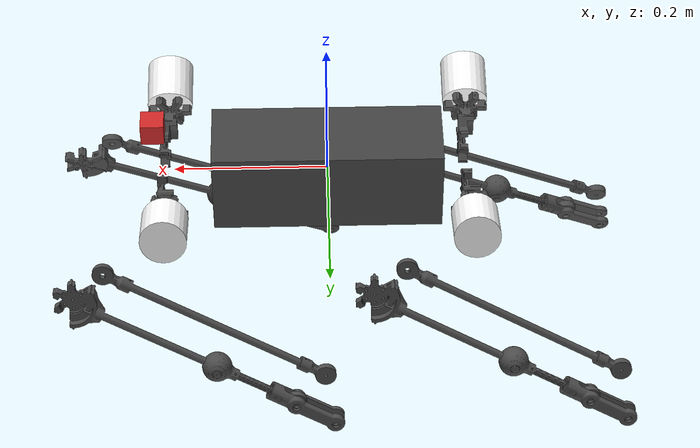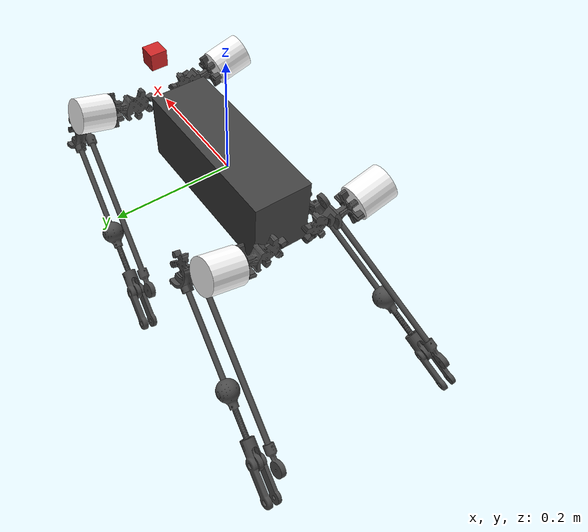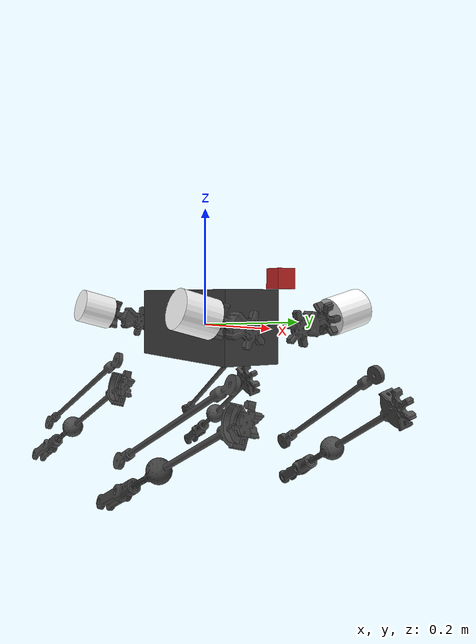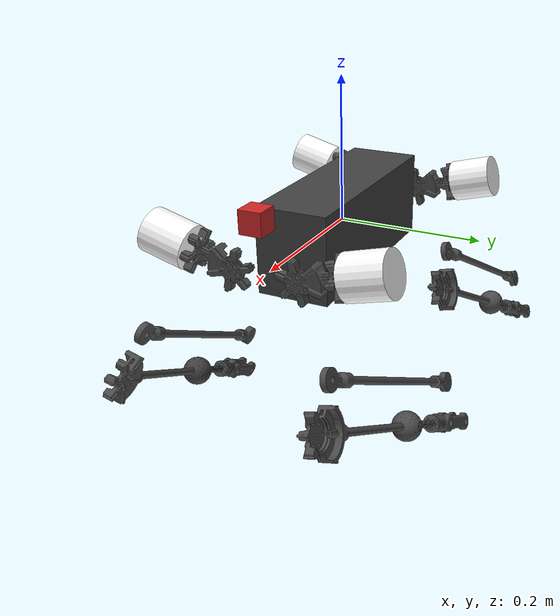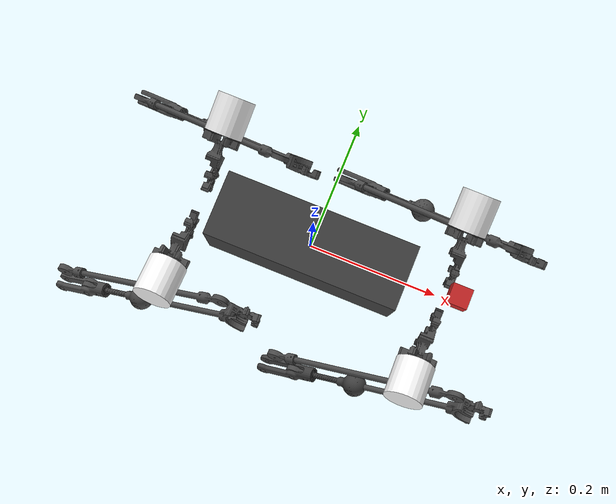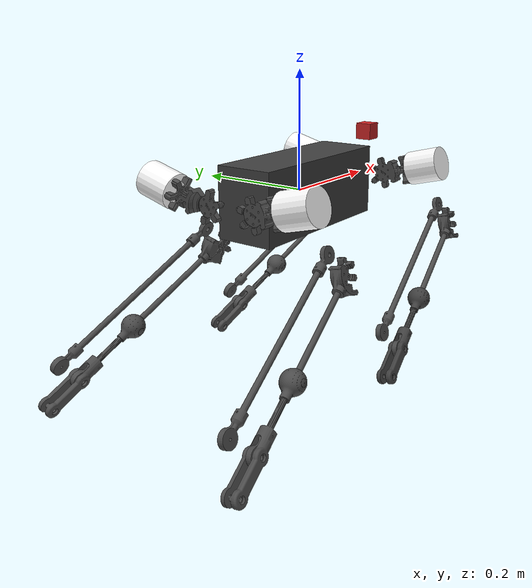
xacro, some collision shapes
<?xml version="1.0" encoding="utf-8"?>
<robot xmlns:xacro="http://ros.org/wiki/xacro" name="husky">

  <xacro:arg name="robot_type" default="husky"/>

  <!-- Properties -->
  <xacro:property name="motor_damping" value="0" />
  <xacro:property name="free_joint_damping" value="0" />
  <xacro:property name="motor_sfriction" value="0" />
  <xacro:property name="free_joint_sfriction" value="0" />
  <xacro:property name="efflim" value="23.5" />

  <xacro:property name="r_hip_frontal_ipos" value="${-0*pi/180}" />
  <xacro:property name="r_hip_frontal_lowlim" value="${-25*pi/180}" />
  <xacro:property name="r_hip_frontal_uplim" value="${-5*pi/180}" />
  <xacro:property name="l_hip_frontal_ipos" value="${-180*pi/180}" />
  <xacro:property name="l_hip_frontal_lowlim" value="${5*pi/180}" />
  <xacro:property name="l_hip_frontal_uplim" value="${25*pi/180}" />

  <xacro:property name="r_axis" value="1" />
  <xacro:property name="l_axis" value="1" />

  <gazebo>
        <plugin filename="libgz_ros2_control-system.so" name="gz_ros2_control::GazeboSimROS2ControlPlugin">

            <parameters>$(find husky_description)/config/controller.yaml</parameters>

            <!-- Optional: specify controller manager node name -->
            <controller_manager_prefix_node_name>controller_manager</controller_manager_prefix_node_name>

            <!-- Optional: tuning -->
            <hold_joints>true</hold_joints>
            <position_proportional_gain>0.5</position_proportional_gain>

        </plugin>
   </gazebo>

  <!-- Joint Definition -->
  <joint name="RF_HAA" type="revolute">
    <parent link="base"/>
    <child link="RF_hip"/>
    <origin rpy="-1.5708 ${r_hip_frontal_ipos} -1.5708" xyz="0.2087 -0.045 0.0001"/>
    <axis xyz="0.0 0.0 1.0"/>
    <dynamics damping="${motor_damping}" friction="${motor_sfriction}"/>
    <limit effort="${efflim}" lower="${r_hip_frontal_lowlim}" upper="${r_hip_frontal_uplim}" velocity="8.7267"/>
  </joint>

  <!-- LF_HAA Joint -->
<joint name="LF_HAA" type="revolute">
  <parent link="base"/>
  <child link="LF_hip"/>
  <origin rpy="-1.5708 ${l_hip_frontal_ipos} -1.5708" xyz="0.2087 0.045 0.0001"/>
  <axis xyz="0.0 0.0 1.0"/>
  <dynamics damping="${motor_damping}" friction="${motor_sfriction}"/>
  <limit effort="${efflim}" lower="${l_hip_frontal_lowlim}" upper="${l_hip_frontal_uplim}" velocity="8.7267"/>
</joint>

<!-- LH_HAA Joint -->
<joint name="LH_HAA" type="revolute">
  <parent link="base"/>
  <child link="LH_hip"/>
  <origin rpy="-1.5708 ${l_hip_frontal_ipos} -1.5708" xyz="-0.1862 0.045 0.0002"/>
  <axis xyz="0.0 0.0 1.0"/>
  <dynamics damping="${motor_damping}" friction="${motor_sfriction}"/>
  <limit effort="${efflim}" lower="${l_hip_frontal_lowlim}" upper="${l_hip_frontal_uplim}" velocity="8.7267"/>
</joint>

<!-- RH_HAA Joint -->
<joint name="RH_HAA" type="revolute">
  <parent link="base"/>
  <child link="RH_hip"/>
  <origin rpy="-1.5708 ${r_hip_frontal_ipos} -1.5708" xyz="-0.1862 -0.045 0.0002"/>
  <axis xyz="0.0 0.0 1.0"/>
  <dynamics damping="${motor_damping}" friction="${motor_sfriction}"/>
  <limit effort="${efflim}" lower="${r_hip_frontal_lowlim}" upper="${r_hip_frontal_uplim}" velocity="8.7267"/>
</joint>

  <!--hip sag ipos -121.61 r -58.39 l-->
  <xacro:property name="fr_hip_sagittal_ipos" value="${-90*pi/180}" />
  <xacro:property name="fr_hip_sagittal_lowlim" value="${-65*pi/180}" />
  <xacro:property name="fr_hip_sagittal_uplim" value="${-25*pi/180}" />
  <xacro:property name="fl_hip_sagittal_ipos" value="${270*pi/180}" />
  <xacro:property name="fl_hip_sagittal_lowlim" value="${25*pi/180}" />
  <xacro:property name="fl_hip_sagittal_uplim" value="${65*pi/180}" />

  <!--hip sag ipos -131.32 r -48.68 l-->
  <xacro:property name="br_hip_sagittal_ipos" value="${-90*pi/180}" />
  <xacro:property name="br_hip_sagittal_lowlim" value="${-65*pi/180}" />
  <xacro:property name="br_hip_sagittal_uplim" value="${-25*pi/180}" />
  <xacro:property name="bl_hip_sagittal_ipos" value="${270*pi/180}" />
  <xacro:property name="bl_hip_sagittal_lowlim" value="${25*pi/180}" />
  <xacro:property name="bl_hip_sagittal_uplim" value="${65*pi/180}" />

  <!-- RF_HFE Joint -->
<joint name="RF_HFE" type="revolute">
  <parent link="RF_hip"/>
  <child link="RF_thigh"/>
  <origin rpy="-1.5708 ${fr_hip_sagittal_ipos} -1.5708" xyz="0.1031 0.0 0.0"/>
  <axis xyz="0.0 0.0 ${r_axis}"/>
  <dynamics damping="${motor_damping}" friction="${motor_sfriction}"/>
  <limit effort="${efflim}" lower="${fr_hip_sagittal_lowlim}" upper="${fr_hip_sagittal_uplim}" velocity="8.7267"/>
</joint>

<!-- LF_HFE Joint -->
<joint name="LF_HFE" type="revolute">
  <parent link="LF_hip"/>
  <child link="LF_thigh"/>
  <origin rpy="-1.5708 ${fl_hip_sagittal_ipos} -1.5708" xyz="0.1031 0.0 0.0"/>
  <axis xyz="0.0 0.0 ${l_axis}"/>
  <dynamics damping="${motor_damping}" friction="${motor_sfriction}"/>
  <limit effort="${efflim}" lower="${fl_hip_sagittal_lowlim}" upper="${fl_hip_sagittal_uplim}" velocity="8.7267"/>
</joint>

  <!-- LH_HFE Joint -->
<joint name="LH_HFE" type="revolute">
  <parent link="LH_hip"/>
  <child link="LH_thigh"/>
  <origin rpy="-1.5708 ${bl_hip_sagittal_ipos} -1.5708" xyz="0.1031 0.0 0.0"/>
  <axis xyz="0.0 0.0 ${l_axis}"/>
  <dynamics damping="${motor_damping}" friction="${motor_sfriction}"/>
  <limit effort="${efflim}" lower="${bl_hip_sagittal_lowlim}" upper="${bl_hip_sagittal_uplim}" velocity="8.7267"/>
</joint>

<!-- RH_HFE Joint -->
<joint name="RH_HFE" type="revolute">
  <parent link="RH_hip"/>
  <child link="RH_thigh"/>
  <origin rpy="-1.5708 ${br_hip_sagittal_ipos} -1.5708" xyz="0.1031 0.0 0.0"/>
  <axis xyz="0.0 0.0 ${r_axis}"/>
  <dynamics damping="${motor_damping}" friction="${motor_sfriction}"/>
  <limit effort="${efflim}" lower="${br_hip_sagittal_lowlim}" upper="${br_hip_sagittal_uplim}" velocity="8.7267"/>
</joint>

  <xacro:property name="r_knee_ipos" value="${-180*pi/180}" />
  <xacro:property name="r_knee_lowlim" value="${42*pi/180}" />
  <xacro:property name="r_knee_uplim" value="${107*pi/180}" />
  <xacro:property name="l_knee_ipos" value="${180*pi/180}" />
  <xacro:property name="l_knee_lowlim" value="${-107*pi/180}" />
  <xacro:property name="l_knee_uplim" value="${-42*pi/180}" />

  <!-- RF_KFE Joint -->
<joint name="RF_KFE" type="revolute">
  <parent link="RF_thigh"/>
  <child link="RF_calf"/>
  <origin rpy="0 0 ${r_knee_ipos}" xyz="0.18 0.0 -0.0431"/>
  <axis xyz="0.0 0.0 ${r_axis}"/>
  <dynamics damping="${motor_damping}" friction="${motor_sfriction}"/>
  <limit effort="${efflim}" lower="${r_knee_lowlim}" upper="${r_knee_uplim}" velocity="8.7267"/>
</joint>

<!-- LF_KFE Joint -->
<joint name="LF_KFE" type="revolute">
  <parent link="LF_thigh"/>
  <child link="LF_calf"/>
  <origin rpy="0 0 ${l_knee_ipos}" xyz="0.18 0.0 -0.0431"/>
  <axis xyz="0.0 0.0 ${l_axis}"/>
  <dynamics damping="${motor_damping}" friction="${motor_sfriction}"/>
  <limit effort="${efflim}" lower="${l_knee_lowlim}" upper="${l_knee_uplim}" velocity="8.7267"/>
</joint>

<!-- LH_KFE Joint -->
<joint name="LH_KFE" type="revolute">
  <parent link="LH_thigh"/>
  <child link="LH_calf"/>
  <origin rpy="0 0 ${l_knee_ipos}" xyz="0.18 0.0 -0.0431"/>
  <axis xyz="0.0 0.0 ${l_axis}"/>
  <dynamics damping="${motor_damping}" friction="${motor_sfriction}"/>
  <limit effort="${efflim}" lower="${l_knee_lowlim}" upper="${l_knee_uplim}" velocity="8.7267"/>
</joint>

<!-- RH_KFE Joint -->
<joint name="RH_KFE" type="revolute">
  <parent link="RH_thigh"/>
  <child link="RH_calf"/>
  <origin rpy="0 0 ${r_knee_ipos}" xyz="0.18 0.0 -0.0431"/>
  <axis xyz="0.0 0.0 ${r_axis}"/>
  <dynamics damping="${motor_damping}" friction="${motor_sfriction}"/>
  <limit effort="${efflim}" lower="${r_knee_lowlim}" upper="${r_knee_uplim}" velocity="8.7267"/>
</joint>

  <!--ANKLES-->

  <xacro:property name="l_ankle_lowlim" value="${-90*pi/180}" />
  <xacro:property name="l_ankle_uplim" value="${90*pi/180}" />
  <xacro:property name="r_ankle_lowlim" value="${-90*pi/180}" />
  <xacro:property name="r_ankle_uplim" value="${90*pi/180}" />

  <!--REAL FOOT SECTION 1/3 (COMMENT THIS IN, COMMENT BELOW OUT)-->
  <!-- RF_ankle Joint -->
<joint name="RF_ankle" type="revolute">
  <parent link="RF_calf"/>
  <child link="RF_fut"/>
  <origin rpy="0 0 ${l_knee_ipos}" xyz="0.333 0.0 0.0"/>
  <axis xyz="0.0 0.0 1.0"/>
  <mimic joint="RF_KFE" multiplier="-1"/>
  <dynamics damping="${free_joint_damping}" friction="${motor_sfriction}"/>
  <limit effort="${efflim}" lower="${r_ankle_lowlim}" upper="${r_ankle_uplim}" velocity="8.7267"/>
</joint>

<!-- LF_ankle Joint -->
<joint name="LF_ankle" type="revolute">
  <parent link="LF_calf"/>
  <child link="LF_fut"/>
  <origin rpy="0 0 ${r_knee_ipos}" xyz="0.333 0.0 0.0"/>
  <axis xyz="0.0 0.0 1.0"/>
  <mimic joint="LF_KFE" multiplier="-1"/>
  <dynamics damping="${free_joint_damping}" friction="${motor_sfriction}"/>
  <limit effort="${efflim}" lower="${l_ankle_lowlim}" upper="${l_ankle_uplim}" velocity="8.7267"/>
</joint>

<!-- LH_ankle Joint -->
<joint name="LH_ankle" type="revolute">
  <parent link="LH_calf"/>
  <child link="LH_fut"/>
  <origin rpy="0 0 ${r_knee_ipos}" xyz="0.333 0.0 0.0"/>
  <axis xyz="0.0 0.0 1.0"/>
  <mimic joint="LH_KFE" multiplier="-1"/>
  <dynamics damping="${free_joint_damping}" friction="${motor_sfriction}"/>
  <limit effort="${efflim}" lower="${l_ankle_lowlim}" upper="${l_ankle_uplim}" velocity="8.7267"/>
</joint>

<!-- RH_ankle Joint -->
<joint name="RH_ankle" type="revolute">
  <parent link="RH_calf"/>
  <child link="RH_fut"/>
  <origin rpy="0 0 ${l_knee_ipos}" xyz="0.333 0.0 0.0"/>
  <axis xyz="0.0 0.0 1.0"/>
  <mimic joint="RH_KFE" multiplier="-1"/>
  <dynamics damping="${free_joint_damping}" friction="${motor_sfriction}"/>
  <limit effort="${efflim}" lower="${r_ankle_lowlim}" upper="${r_ankle_uplim}" velocity="8.7267"/>
</joint>

  <joint name="RF_foot_fixed" type="fixed">
    <parent link="RF_fut"/>
    <child link="RF_FOOT"/>
    <origin rpy="0 0 0"   xyz="0.0 0.0 0.0"/>
  </joint>

  <joint name="LF_foot_fixed" type="fixed">
    <parent link="LF_fut"/>
    <child link="LF_FOOT"/>
    <origin rpy="0 0 0"   xyz="0.0 0.0 0.0"/>
  </joint>

  <joint name="LH_foot_fixed" type="fixed">
    <parent link="LH_fut"/>
    <child link="LH_FOOT"/>
    <origin rpy="0 0 0"   xyz="0.0 0.0 0.0"/>
  </joint>

  <joint name="RH_foot_fixed" type="fixed">
    <parent link="RH_fut"/>
    <child link="RH_FOOT"/>
    <origin rpy="0 0 0"   xyz="0.0 0.0 0.0"/>
  </joint>

  <gazebo reference="RF_foot_fixed">
    <disableFixedJointLumping>false</disableFixedJointLumping>
  </gazebo>

  <gazebo reference="LF_foot_fixed">
    <disableFixedJointLumping>false</disableFixedJointLumping>
  </gazebo>

  <gazebo reference="LH_foot_fixed">
    <disableFixedJointLumping>false</disableFixedJointLumping>
  </gazebo>

  <gazebo reference="RH_foot_fixed">
    <disableFixedJointLumping>false</disableFixedJointLumping>
  </gazebo>

  <!--LINKS-->

  <link name="root">
  </link>

  <joint name="root_to_base_joint" type="fixed">
    <parent link="root"/>
    <child link="base"/>
    <origin rpy="0 0 0"   xyz="0 0.0 0.0"/>
  </joint>

  <link name="base">
    <inertial>
      <mass value="3.1895"/>
      <origin rpy="0.0 0.0 0" xyz="-0.0301 0 0.0241"/>
      <inertia ixx="0.0170990623" ixy="3.09e-08" ixz="-5.394e-07" iyy="0.0115476717" iyz="4.77948e-05" izz="0.0268461573"/>
    </inertial>
    <collision>
      <origin rpy="0 0 0" xyz="0 0 0"/>
      <geometry>
        <box size="0.3 0.1 0.12"/>
      </geometry>
    </collision>
    <collision>
      <origin rpy="0 0 0" xyz="0 0 -0.1"/>
      <geometry>
        <box size="0.4 0.16 0.32"/>
      </geometry>
    </collision>
    <visual name="base_visual">
      <origin rpy="-1.5708 0.0 1.5708" xyz=".212 -.258 0.128"/>
      <geometry>
        <mesh filename="package://husky_description/meshes/body_link_prop_part_bin.STL" scale="1 1 1"/>
      </geometry>
      <material name="">
        <color rgba="0.251 0.251 0.251 1.0"/>
      </material>
    </visual>
  </link>
  <gazebo reference="base">
    <mu1>0.9</mu1>
    <mu2>0.9</mu2>
    <self_collide>1</self_collide>
    <kp value="1000000.0"/>
    <kd value="100.0"/>
  </gazebo>
  <xacro:property name="hip_ix" value="0.02" />
  <xacro:property name="hip_length" value="0.08" />
  <xacro:property name="hip_radius" value="0.03" />

  <link name="RF_hip">
    <inertial>
      <mass value="0.02"/>
      <origin rpy="0 0.0 0.0" xyz="0.026 0 0"/>
      <inertia ixx="0.00000495196" ixy="2.86338e-09" ixz="-0.00000134345"  iyy="0.0000137904" iyz="0.0000000399775" izz="0.0000152492"/>
    </inertial>
    <collision>
      <origin rpy="0.0 1.5708 0.0" xyz="${hip_ix} 0 0"/>
      <geometry>
        <cylinder length="${hip_length}" radius="${hip_radius}"/>
      </geometry>
    </collision>
    <visual name="RF_hip_visual">
      <origin rpy="3.1416 0.0 0.0" xyz="0.0 0.0 0.0"/>
      <geometry>
        <mesh filename="package://husky_description/meshes/fr_hip.STL" scale="1 1 1"/>
      </geometry>
      <material name="">
        <color rgba="0.298 0.298 0.298 1.0"/>
      </material>
    </visual>
  </link>

  <link name="LF_hip">
    <inertial>
      <mass value="0.02"/>
      <origin rpy="0 0.0 0.0" xyz="0.026 0 0"/>
      <inertia ixx="0.00000495196" ixy="2.86338e-09" ixz="-0.00000134345"  iyy="0.0000137904" iyz="0.0000000399775" izz="0.0000152492"/>
    </inertial>
    <collision>
      <origin rpy="0.0 1.5708 0.0" xyz="${hip_ix} 0 0"/>
      <geometry>
        <cylinder length="${hip_length}" radius="${hip_radius}"/>
      </geometry>
    </collision>
    <visual name="LF_hip_visual">
      <origin rpy="3.1416 0.0 0.0" xyz="0.0 0.0 0.0"/>
      <geometry>
        <mesh filename="package://husky_description/meshes/bl_hip.STL" scale="1 1 1"/>
      </geometry>
      <material name="">
        <color rgba="0.298 0.298 0.298 1.0"/>
      </material>
    </visual>
  </link>

  <link name="LH_hip">
    <inertial>
      <mass value="0.02"/>
      <origin rpy="0 0.0 0.0" xyz="0.026 0 0"/>
      <inertia ixx="0.00000495196" ixy="2.86338e-09" ixz="-0.00000134345"  iyy="0.0000137904" iyz="0.0000000399775" izz="0.0000152492"/>
    </inertial>
    <collision>
      <origin rpy="0.0 1.5708 0.0" xyz="${hip_ix} 0 0"/>
      <geometry>
        <cylinder length="${hip_length}" radius="${hip_radius}"/>
      </geometry>
    </collision>
    <visual name="LH_hip_visual">
      <origin rpy="3.1416 0.0 0.0" xyz="0.0 0.0 0.0"/>
      <geometry>
        <mesh filename="package://husky_description/meshes/bl_hip.STL" scale="1 1 1"/>
      </geometry>
      <material name="">
        <color rgba="0.298 0.298 0.298 1.0"/>
      </material>
    </visual>
  </link>

  <link name="RH_hip">
    <inertial>
      <mass value="0.02"/>
      <origin rpy="0 0.0 0.0" xyz="0.026 0 0"/>
      <inertia ixx="0.00000495196" ixy="2.86338e-09" ixz="-0.00000134345"  iyy="0.0000137904" iyz="0.0000000399775" izz="0.0000152492"/>
    </inertial>
    <collision>
      <origin rpy="0.0 1.5708 0.0" xyz="${hip_ix} 0 0"/>
      <geometry>
        <cylinder length="${hip_length}" radius="${hip_radius}"/>
      </geometry>
    </collision>
    <visual name="RH_hip_visual">
      <origin rpy="3.1416 0.0 0.0" xyz="0.0 0.0 0.0"/>
      <geometry>
        <mesh filename="package://husky_description/meshes/fr_hip.STL" scale="1 1 1"/>
      </geometry>
      <material name="">
        <color rgba="0.298 0.298 0.298 1.0"/>
      </material>
    </visual>
  </link>

  <gazebo reference="RF_hip">
    <mu1>0.2</mu1>
    <mu2>0.2</mu2>
    <material>Gazebo/DarkGrey</material>
  </gazebo>
  <gazebo reference="LF_hip">
    <mu1>0.2</mu1>
    <mu2>0.2</mu2>
    <material>Gazebo/DarkGrey</material>
  </gazebo>
  <gazebo reference="LH_hip">
    <mu1>0.2</mu1>
    <mu2>0.2</mu2>
    <material>Gazebo/DarkGrey</material>
  </gazebo>
  <gazebo reference="RH_hip">
    <mu1>0.2</mu1>
    <mu2>0.2</mu2>
    <material>Gazebo/DarkGrey</material>
  </gazebo>

  <xacro:property name="femur_ix" value="0.09" />
  <xacro:property name="femur_length" value="0.20" />
  <xacro:property name="femur_radius" value="0.01" />

  <xacro:property name="femur_n1_iz" value="-0.01" />
  <xacro:property name="femur_n1_length" value="0.06" />
  <xacro:property name="femur_n1_radius" value="0.03" />

  <xacro:property name="femur_n2_ix" value="0.18" />
  <xacro:property name="femur_n2_iz" value="-0.005" />
  <xacro:property name="femur_n2_length" value="0.05" />
  <xacro:property name="femur_n2_radius" value="0.03" />

  <link name="RF_thigh">
    <inertial>
      <mass value="0.2"/>
      <origin rpy="0 0 0" xyz="0.098 0.0 -0.015"/>
      <inertia ixx="0.0000904183" ixy="-1.20401e-08" ixz="0.000000264487"  iyy="0.0015249" iyz="-0.0000198213" izz="0.00155644"/>
    </inertial>
    <collision>
      <origin rpy="0 0 0" xyz="0 0 ${femur_n1_iz}"/>
      <geometry>
        <cylinder length="${femur_n1_length}" radius="${femur_n1_radius}"/>
      </geometry>
    </collision>
    <collision>
      <origin rpy="0.0 1.5708 0.0" xyz="${femur_ix} 0 0"/>
      <geometry>
        <cylinder length="${femur_length}" radius="${femur_radius}"/>
      </geometry>
    </collision>
    <collision>
      <origin rpy="0.0 0.0 0.0" xyz="${femur_n2_ix} 0 ${femur_n2_iz}"/>
      <geometry>
        <cylinder length="${femur_n2_length}" radius="${femur_n2_radius}"/>
      </geometry>
    </collision>
    <visual name="RF_thigh_visual">
      <origin rpy="-1.5708 0.0 0.0" xyz="0.0 0.0 0.0"/>
      <geometry>
        <mesh filename="package://husky_description/meshes/fr_femur.STL" scale="1 1 1"/>
      </geometry>
      <material name="">
        <color rgba="1.0 1.0 1.0 1.0"/>
      </material>
    </visual>
  </link>

  <link name="LF_thigh">
    <inertial>
      <mass value="0.2"/>
      <origin rpy="0 0 0" xyz="0.098 -0.0 -0.015"/>
      <inertia ixx="0.0000904183" ixy="1.20401e-08" ixz="0.000000264487"  iyy="0.0015249" iyz="0.0000198213" izz="0.00155644"/>
    </inertial>
    <collision>
      <origin rpy="0 0 0" xyz="0 0 ${femur_n1_iz}"/>
      <geometry>
        <cylinder length="${femur_n1_length}" radius="${femur_n1_radius}"/>
      </geometry>
    </collision>
    <collision>
      <origin rpy="0.0 1.5708 0.0" xyz="${femur_ix} 0 0"/>
      <geometry>
        <cylinder length="${femur_length}" radius="${femur_radius}"/>
      </geometry>
    </collision>
    <collision>
      <origin rpy="0.0 0.0 0.0" xyz="${femur_n2_ix} 0 ${femur_n2_iz}"/>
      <geometry>
        <cylinder length="${femur_n2_length}" radius="${femur_n2_radius}"/>
      </geometry>
    </collision>
    <visual name="LF_thigh_visual">
      <origin rpy="0 0.0 0.0" xyz="0.0 0.0 0.0"/>
      <geometry>
        <mesh filename="package://husky_description/meshes/bl_femur.STL" scale="1 1 1"/>
      </geometry>
      <material name="">
        <color rgba="1.0 1.0 1.0 1.0"/>
      </material>
    </visual>
  </link>

  <link name="LH_thigh">
    <inertial>
      <mass value="0.2"/>
      <origin rpy="0 0 0" xyz="0.098 -0.0 -0.015"/>
      <inertia ixx="0.0000904183" ixy="1.20401e-08" ixz="0.000000264487"  iyy="0.0015249" iyz="0.0000198213" izz="0.00155644"/>
    </inertial>
    <collision>
      <origin rpy="0 0 0" xyz="0 0 ${femur_n1_iz}"/>
      <geometry>
        <cylinder length="${femur_n1_length}" radius="${femur_n1_radius}"/>
      </geometry>
    </collision>
    <collision>
      <origin rpy="0.0 1.5708 0.0" xyz="${femur_ix} 0 0"/>
      <geometry>
        <cylinder length="${femur_length}" radius="${femur_radius}"/>
      </geometry>
    </collision>
    <collision>
      <origin rpy="0.0 0.0 0.0" xyz="${femur_n2_ix} 0 ${femur_n2_iz}"/>
      <geometry>
        <cylinder length="${femur_n2_length}" radius="${femur_n2_radius}"/>
      </geometry>
    </collision>
    <visual name="LH_thigh_visual">
      <origin rpy="0 0.0 0.0" xyz="0.0 0.0 0.0"/>
      <geometry>
        <mesh filename="package://husky_description/meshes/bl_femur.STL" scale="1 1 1"/>
      </geometry>
      <material name="">
        <color rgba="1.0 1.0 1.0 1.0"/>
      </material>
    </visual>
  </link>

  <link name="RH_thigh">
    <inertial>
      <mass value="0.2"/>
      <origin rpy="0 0 0" xyz="0.098 0.0 -0.015"/>
      <inertia ixx="0.0000904183" ixy="-1.20401e-08" ixz="0.000000264487"  iyy="0.0015249" iyz="-0.0000198213" izz="0.00155644"/>
    </inertial>
    <collision>
      <origin rpy="0.0 0.0 0.0" xyz="0 0 ${femur_n1_iz}"/>
      <geometry>
        <cylinder length="${femur_n1_length}" radius="${femur_n1_radius}"/>
      </geometry>
    </collision>
    <collision>
      <origin rpy="0.0 1.5708 0.0" xyz="${femur_ix} 0 0"/>
      <geometry>
        <cylinder length="${femur_length}" radius="${femur_radius}"/>
      </geometry>
    </collision>
    <collision>
      <origin rpy="0.0 0.0 0.0" xyz="${femur_n2_ix} 0 ${femur_n2_iz}"/>
      <geometry>
        <cylinder length="${femur_n2_length}" radius="${femur_n2_radius}"/>
      </geometry>
    </collision>
    <visual name="RH_thigh_visual">
      <origin rpy="-1.5708 0.0 0.0" xyz="0.0 0.0 0.0"/>
      <geometry>
        <mesh filename="package://husky_description/meshes/fr_femur.STL" scale="1 1 1"/>
      </geometry>
      <material name="">
        <color rgba="1.0 1.0 1.0 1.0"/>
      </material>
    </visual>
  </link>

  <gazebo reference="RF_thigh">
    <mu1>0.2</mu1>
    <mu2>0.2</mu2>
    <self_collide>0</self_collide>
    <material>Gazebo/DarkGrey</material>
    <kp value="1000000.0"/>
    <kd value="100.0"/>
  </gazebo>
  <gazebo reference="LF_thigh">
    <mu1>0.2</mu1>
    <mu2>0.2</mu2>
    <self_collide>0</self_collide>
    <material>Gazebo/DarkGrey</material>
    <kp value="1000000.0"/>
    <kd value="100.0"/>
  </gazebo>
  <gazebo reference="LH_thigh">
    <mu1>0.2</mu1>
    <mu2>0.2</mu2>
    <self_collide>0</self_collide>
    <material>Gazebo/DarkGrey</material>
    <kp value="1000000.0"/>
    <kd value="100.0"/>
  </gazebo>
  <gazebo reference="RH_thigh">
    <mu1>0.2</mu1>
    <mu2>0.2</mu2>
    <self_collide>0</self_collide>
    <material>Gazebo/DarkGrey</material>
    <kp value="1000000.0"/>
    <kd value="100.0"/>
  </gazebo>

  <xacro:property name="tibia_ix" value="0.16" />
  <xacro:property name="tibia_length" value="0.32" />
  <xacro:property name="tibia_radius" value="0.01" />

  <link name="RF_calf">
    <inertial>
      <mass value="0.05"/>
      <origin rpy="0 0 0" xyz="0.105 0.0 0"/>
      <inertia ixx="9.48861e-06" ixy="-1.60261e-09" ixz="-1.51986e-05" iyy="0.000910823" iyz="5.37151e-08" izz="0.000917045"/>
    </inertial>
    <collision>
      <origin rpy="0.0 1.5708 0.0" xyz="${tibia_ix} 0 0"/>
      <geometry>
        <cylinder length="${tibia_length}" radius="${tibia_radius}"/>
      </geometry>
    </collision>
    <visual name="RF_calf_visual">
      <origin rpy="0 0.0 0.0" xyz="0.0 0.0 0.0"/>
      <geometry>
        <mesh filename="package://husky_description/meshes/fr_tibia.STL" scale="1 1 1"/>
      </geometry>
      <material name="">
        <color rgba="0.298 0.298 0.298 1.0"/>
      </material>
    </visual>
  </link>

  <link name="LF_calf">
    <inertial>
      <mass value="0.05"/>
      <origin rpy="0 0 0" xyz="0.105 0.0 0"/>
      <inertia ixx="9.48861e-06" ixy="-1.60261e-09" ixz="-1.51986e-05" iyy="0.000910823" iyz="5.37151e-08" izz="0.000917045"/>
    </inertial>
    <collision>
      <origin rpy="0.0 1.5708 0.0" xyz="${tibia_ix} 0 0"/>
      <geometry>
        <cylinder length="${tibia_length}" radius="${tibia_radius}"/>
      </geometry>
    </collision>
    <visual name="LF_calf_visual">
      <origin rpy="0 0.0 0.0" xyz="0.0 0.0 0.0"/>
      <geometry>
        <mesh filename="package://husky_description/meshes/fr_tibia.STL" scale="1 1 1"/>
      </geometry>
      <material name="">
        <color rgba="0.298 0.298 0.298 1.0"/>
      </material>
    </visual>
  </link>

  <link name="LH_calf">
    <inertial>
      <mass value="0.05"/>
      <origin rpy="0 0 0" xyz="0.105 0.0 0"/>
      <inertia ixx="9.48861e-06" ixy="-1.60261e-09" ixz="-1.51986e-05" iyy="0.000910823" iyz="5.37151e-08" izz="0.000917045"/>
    </inertial>
    <collision>
      <origin rpy="0.0 1.5708 0.0" xyz="${tibia_ix} 0 0"/>
      <geometry>
        <cylinder length="${tibia_length}" radius="${tibia_radius}"/>
      </geometry>
    </collision>
    <visual name="LH_calf_visual">
      <origin rpy="0 0.0 0.0" xyz="0.0 0.0 0.0"/>
      <geometry>
        <mesh filename="package://husky_description/meshes/fr_tibia.STL" scale="1 1 1"/>
      </geometry>
      <material name="">
        <color rgba="0.298 0.298 0.298 1.0"/>
      </material>
    </visual>
  </link>

  <link name="RH_calf">
    <inertial>
      <mass value="0.05"/>
      <origin rpy="0 0 0" xyz="0.105 0.0 0"/>
      <inertia ixx="9.48861e-06" ixy="-1.60261e-09" ixz="-1.51986e-05" iyy="0.000910823" iyz="5.37151e-08" izz="0.000917045"/>
    </inertial>
    <collision>
      <origin rpy="0.0 1.5708 0.0" xyz="${tibia_ix} 0 0"/>
      <geometry>
        <cylinder length="${tibia_length}" radius="${tibia_radius}"/>
      </geometry>
    </collision>
    <visual name="RH_calf_visual">
      <origin rpy="0 0.0 0.0" xyz="0.0 0.0 0.0"/>
      <geometry>
        <mesh filename="package://husky_description/meshes/fr_tibia.STL" scale="1 1 1"/>
      </geometry>
      <material name="">
        <color rgba="0.298 0.298 0.298 1.0"/>
      </material>
    </visual>
  </link>

  <gazebo reference="RF_calf">
    <mu1>0.6</mu1>
    <mu2>0.6</mu2>
    <self_collide>1</self_collide>
  </gazebo>
  <gazebo reference="LF_calf">
    <mu1>0.6</mu1>
    <mu2>0.6</mu2>
    <self_collide>1</self_collide>
  </gazebo>
  <gazebo reference="LH_calf">
    <mu1>0.6</mu1>
    <mu2>0.6</mu2>
    <self_collide>1</self_collide>
  </gazebo>
  <gazebo reference="RH_calf">
    <mu1>0.6</mu1>
    <mu2>0.6</mu2>
    <self_collide>1</self_collide>
  </gazebo>

  <!--REAL FOOT SECTION 2/3 (COMMENT THIS IN, COMMENT BELOW OUT)-->

  <xacro:property name="foot_ix" value="0.01" />
  <xacro:property name="foot_length" value="0.16" />
  <xacro:property name="foot_radius" value="0.01" />

  <xacro:property name="foot_sphere_ix" value="0.12" />
  <xacro:property name="foot_sphere_radius" value="0.02" />

  <link name="RF_fut">
    <inertial>
      <mass value="0.05"/>
      <origin rpy="0.0 0.0 0.0" xyz="0.054 -0.0 0.0"/>
      <inertia ixx="6.8332e-06" ixy="-1.50915e-09" ixz="3.22287e-09" iyy="0.000251472" iyz="-3.20327e-09" izz="0.000250429"/>
    </inertial>
    <collision>
      <origin rpy="0.0 1.5708 0.0" xyz="${foot_ix} 0 0"/>
      <geometry>
        <cylinder length="${foot_length}" radius="${foot_radius}"/>
      </geometry>
    </collision>
    <visual name="RF_fut_visual">
      <origin rpy="0.0 0.0 0.0" xyz="0.0 0.0 0.0"/>
      <geometry>
        <mesh filename="package://husky_description/meshes/fr_foot.STL" scale="1 1 1"/>
      </geometry>
      <material name="">
        <color rgba="0.251 0.251 0.251 1.0"/>
      </material>
    </visual>
  </link>

  <link name="LF_fut">
    <inertial>
      <mass value="0.05"/>
      <origin rpy="0.0 0.0 0.0" xyz="0.054 -0.0 0.0"/>
      <inertia ixx="6.8332e-06" ixy="-1.50915e-09" ixz="3.22287e-09" iyy="0.000251472" iyz="-3.20327e-09" izz="0.000250429"/>
    </inertial>
    <collision>
      <origin rpy="0.0 1.5708 0.0" xyz="${foot_ix} 0 0"/>
      <geometry>
        <cylinder length="${foot_length}" radius="${foot_radius}"/>
      </geometry>
    </collision>
    <visual name="LF_fut_visual">
      <origin rpy="0.0 0.0 0.0" xyz="0.0 0.0 0.0"/>
      <geometry>
        <mesh filename="package://husky_description/meshes/fr_foot.STL" scale="1 1 1"/>
      </geometry>
      <material name="">
        <color rgba="0.298 0.298 0.298 1.0"/>
      </material>
    </visual>
  </link>

  <link name="LH_fut">
    <inertial>
      <mass value="0.05"/>
      <origin rpy="0.0 0.0 0.0" xyz="0.054 -0.0 0.0"/>
      <inertia ixx="6.8332e-06" ixy="-1.50915e-09" ixz="3.22287e-09" iyy="0.000251472" iyz="-3.20327e-09" izz="0.000250429"/>
    </inertial>
    <collision>
      <origin rpy="0.0 1.5708 0.0" xyz="${foot_ix} 0 0"/>
      <geometry>
        <cylinder length="${foot_length}" radius="${foot_radius}"/>
      </geometry>
    </collision>
    <visual name="LH_fut_visual">
      <origin rpy="0.0 0.0 0.0" xyz="0.0 0.0 0.0"/>
      <geometry>
        <mesh filename="package://husky_description/meshes/fr_foot.STL" scale="1 1 1"/>
      </geometry>
      <material name="">
        <color rgba="0.298 0.298 0.298 1.0"/>
      </material>
    </visual>
  </link>

  <link name="RH_fut">
    <inertial>
      <mass value="0.05"/>
      <origin rpy="0.0 0.0 0.0" xyz="0.054 -0.0 0.0"/>
      <inertia ixx="6.8332e-06" ixy="-1.50915e-09" ixz="3.22287e-09" iyy="0.000251472" iyz="-3.20327e-09" izz="0.000250429"/>
    </inertial>
    <collision>
      <origin rpy="0.0 1.5708 0.0" xyz="${foot_ix} 0 0"/>
      <geometry>
        <cylinder length="${foot_length}" radius="${foot_radius}"/>
      </geometry>
    </collision>
    <visual name="RH_fut_visual">
      <origin rpy="0.0 0.0 0.0" xyz="0.0 0.0 0.0"/>
      <geometry>
        <mesh filename="package://husky_description/meshes/fr_foot.STL" scale="1 1 1"/>
      </geometry>
      <material name="">
        <color rgba="0.298 0.298 0.298 1.0"/>
      </material>
    </visual>
  </link>

  <gazebo reference="RF_fut">
    <mu1>0.6</mu1>
    <mu2>0.6</mu2>
    <material>Gazebo/DarkGrey</material>
  </gazebo>
  <gazebo reference="LF_fut">
    <mu1>0.6</mu1>
    <mu2>0.6</mu2>
    <material>Gazebo/DarkGrey</material>
  </gazebo>
  <gazebo reference="LH_fut">
    <mu1>0.6</mu1>
    <mu2>0.6</mu2>
    <material>Gazebo/DarkGrey</material>
  </gazebo>
  <gazebo reference="RH_fut">
    <mu1>0.6</mu1>
    <mu2>0.6</mu2>
    <material>Gazebo/DarkGrey</material>
  </gazebo>

  <!-- Right Front Foot -->
  <link name="RF_FOOT">
    <inertial>
      <mass value="0.06"/>
      <inertia ixx="9.6e-06" ixy="0.0" ixz="0.0" iyy="9.6e-06" iyz="0.0" izz="9.6e-06"/>
    </inertial>
    <collision name="RF_FOOT_collision">
      <origin rpy="0 0 0" xyz="${foot_sphere_ix} 0 0"/>
      <geometry><sphere radius="${foot_sphere_radius}"/></geometry>
    </collision>
    <visual name="RF_FOOT_visual">
      <origin rpy="0 0 0" xyz="${foot_sphere_ix} 0 0"/>
      <geometry><sphere radius="${foot_sphere_radius}"/></geometry>

    </visual>
    <sensor name="rf_foot_contact_sensor" type="contact">
      <contact>
        <collision>RF_FOOT_collision</collision>
      </contact>
      <always_on>true</always_on>
      <update_rate>100.0</update_rate>
      <plugin name="gazebo_ros_contact_rf" filename="gz_ros2_contact_sensor_system">
        <ros>
          <namespace>/rf_foot</namespace>
          <remapping>~/contacts:=contacts</remapping>
        </ros>
      </plugin>
    </sensor>
  </link>

  <!-- Left Front Foot -->
  <link name="LF_FOOT">
    <inertial>
      <mass value="0.06"/>
      <inertia ixx="9.6e-06" ixy="0.0" ixz="0.0" iyy="9.6e-06" iyz="0.0" izz="9.6e-06"/>
    </inertial>
    <collision name="LF_FOOT_collision">
      <origin rpy="0 0 0" xyz="${foot_sphere_ix} 0 0"/>
      <geometry><sphere radius="${foot_sphere_radius}"/></geometry>
    </collision>
    <visual name="LF_FOOT_visual">
      <origin rpy="0 0 0" xyz="${foot_sphere_ix} 0 0"/>
      <geometry><sphere radius="${foot_sphere_radius}"/></geometry>

    </visual>
    <sensor name="lf_foot_contact_sensor" type="contact">
      <contact>
        <collision>LF_FOOT_collision</collision>
      </contact>
      <always_on>true</always_on>
      <update_rate>100.0</update_rate>
      <plugin name="gazebo_ros_contact_lf" filename="gz_ros2_contact_sensor_system">
        <ros>
          <namespace>/lf_foot</namespace>
          <remapping>~/contacts:=contacts</remapping>
        </ros>
      </plugin>
    </sensor>
  </link>

  <!-- Left Hind Foot -->
  <link name="LH_FOOT">
    <inertial>
      <mass value="0.06"/>
      <inertia ixx="9.6e-06" ixy="0.0" ixz="0.0" iyy="9.6e-06" iyz="0.0" izz="9.6e-06"/>
    </inertial>
    <collision name="LH_FOOT_collision">
      <origin rpy="0 0 0" xyz="${foot_sphere_ix} 0 0"/>
      <geometry><sphere radius="${foot_sphere_radius}"/></geometry>
    </collision>
    <visual name="LH_FOOT_visual">
      <origin rpy="0 0 0" xyz="${foot_sphere_ix} 0 0"/>
      <geometry><sphere radius="${foot_sphere_radius}"/></geometry>

    </visual>
    <sensor name="lh_foot_contact_sensor" type="contact">
      <contact>
        <collision>LH_FOOT_collision</collision>
      </contact>
      <always_on>true</always_on>
      <update_rate>100.0</update_rate>
      <plugin name="gazebo_ros_contact_lh" filename="gz_ros2_contact_sensor_system">
        <ros>
          <namespace>/lh_foot</namespace>
          <remapping>~/contacts:=contacts</remapping>
        </ros>
      </plugin>
    </sensor>
  </link>

  <!-- Right Hind Foot -->
  <link name="RH_FOOT">
    <inertial>
      <mass value="0.06"/>
      <inertia ixx="9.6e-06" ixy="0.0" ixz="0.0" iyy="9.6e-06" iyz="0.0" izz="9.6e-06"/>
    </inertial>
    <collision name="RH_FOOT_collision">
      <origin rpy="0 0 0" xyz="${foot_sphere_ix} 0 0"/>
      <geometry><sphere radius="${foot_sphere_radius}"/></geometry>
    </collision>
    <visual name="RH_FOOT_visual">
      <origin rpy="0 0 0" xyz="${foot_sphere_ix} 0 0"/>
      <geometry><sphere radius="${foot_sphere_radius}"/></geometry>

    </visual>

    <sensor name="rh_foot_contact_sensor" type="contact">
      <contact>
        <collision>RH_FOOT_collision</collision>
      </contact>
      <always_on>true</always_on>
      <update_rate>100.0</update_rate>
      <plugin name="gazebo_ros_contact_rh" filename="gz_ros2_contact_sensor_system">
        <ros>
          <namespace>/rh_foot</namespace>
          <remapping>~/contacts:=contacts</remapping>
        </ros>
      </plugin>
    </sensor>
  </link>

  <gazebo reference="RF_FOOT">
    <mu1>0.9</mu1>
    <mu2>0.9</mu2>
    <self_collide>1</self_collide>
    <material>Gazebo/DarkGrey</material>
    <kp value="1000000.0"/>
    <kd value="100.0"/>
  </gazebo>
  <gazebo reference="LF_FOOT">
    <mu1>0.9</mu1>
    <mu2>0.9</mu2>
    <self_collide>1</self_collide>
    <material>Gazebo/DarkGrey</material>
    <kp value="1000000.0"/>
    <kd value="100.0"/>
  </gazebo>
  <gazebo reference="LH_FOOT">
    <mu1>0.9</mu1>
    <mu2>0.9</mu2>
    <self_collide>1</self_collide>
    <material>Gazebo/DarkGrey</material>
    <kp value="1000000.0"/>
    <kd value="100.0"/>
  </gazebo>
  <gazebo reference="RH_FOOT">
    <mu1>0.9</mu1>
    <mu2>0.9</mu2>
    <self_collide>1</self_collide>
    <material>Gazebo/DarkGrey</material>
    <kp value="1000000.0"/>
    <kd value="100.0"/>
  </gazebo>

  <!--CONTROL ROD SECTION 1/2-->
  <!-- fr_control_rod Joint (mimics RF_KFE) -->
    <joint name="fr_control_rod" type="revolute">
    <parent link="RF_thigh"/>
    <child link="fr_fibula"/>
    <origin rpy="0 0.0 ${r_knee_ipos}" xyz="0.12 0.0 -0.0431"/>
    <axis xyz="0.0 0.0 1.0"/>
    <mimic joint="RF_KFE" multiplier="1"/>
    <dynamics damping="${free_joint_damping}" friction="${free_joint_sfriction}"/>
    <limit effort="${efflim}" lower="${r_knee_lowlim}" upper="${r_knee_uplim}" velocity="8.7267"/>
    </joint>

    <!-- fl_control_rod Joint (mimics LF_KFE) -->
    <joint name="fl_control_rod" type="revolute">
    <parent link="LF_thigh"/>
    <child link="fl_fibula"/>
    <origin rpy="0 0.0 ${l_knee_ipos}" xyz="0.12 0.0 -0.0431"/>
    <axis xyz="0.0 0.0 1.0"/>
    <mimic joint="LF_KFE" multiplier="1"/>
    <dynamics damping="${free_joint_damping}" friction="${free_joint_sfriction}"/>
    <limit effort="${efflim}" lower="${l_knee_lowlim}" upper="${l_knee_uplim}" velocity="8.7267"/>
    </joint>

    <!-- bl_control_rod Joint (mimics LH_KFE) -->
    <joint name="bl_control_rod" type="revolute">
    <parent link="LH_thigh"/>
    <child link="bl_fibula"/>
    <origin rpy="0 0.0 ${l_knee_ipos}" xyz="0.12 0.0 -0.0431"/>
    <axis xyz="0.0 0.0 1.0"/>
    <mimic joint="LH_KFE" multiplier="1"/>
    <dynamics damping="${free_joint_damping}" friction="${free_joint_sfriction}"/>
    <limit effort="${efflim}" lower="${l_knee_lowlim}" upper="${l_knee_uplim}" velocity="8.7267"/>
    </joint>

    <!-- br_control_rod Joint (mimics RH_KFE) -->
    <joint name="br_control_rod" type="revolute">
    <parent link="RH_thigh"/>
    <child link="br_fibula"/>
    <origin rpy="0 0.0 ${r_knee_ipos}" xyz="0.12 0.0 -0.0431"/>
    <axis xyz="0.0 0.0 1.0"/>
    <mimic joint="RH_KFE" multiplier="1"/>
    <dynamics damping="${free_joint_damping}" friction="${free_joint_sfriction}"/>
    <limit effort="${efflim}" lower="${r_knee_lowlim}" upper="${r_knee_uplim}" velocity="8.7267"/>
    </joint>

  <xacro:property name="fibula_ix" value="0.14" />
  <xacro:property name="fibula_length" value="0.24" />
  <xacro:property name="fibula_radius" value="0.01" />

  <link name="fr_fibula">
    <inertial>
      <mass value="0.020"/>
      <origin rpy="0.0 0.0 0.0" xyz="0.173 -0.0 -0.000"/>
      <inertia ixx="8.92564e-07" ixy="-6.08931e-13" ixz="-4.52477e-07" iyy="0.000405016" iyz="-1.2126e-09" izz="0.000405428"/>
    </inertial>
    <collision>
      <origin rpy="0.0 1.5708 0.0" xyz="${fibula_ix} 0 0"/>
      <geometry>
        <cylinder length="${fibula_length}" radius="${fibula_radius}"/>
      </geometry>
    </collision>
    <visual name="fr_fibula_visual">
      <origin rpy="0.0 0.0 0.0" xyz="0.0 0.0 0.0"/>
      <geometry>
        <mesh filename="package://husky_description/meshes/fr_fibula.STL" scale="1 1 1"/>
      </geometry>
      <material name="">
        <color rgba="0.298 0.298 0.298 1.0"/>
      </material>
    </visual>
  </link>

  <link name="fl_fibula">
    <inertial>
      <mass value="0.020"/>
      <origin rpy="0.0 0.0 0.0" xyz="0.173 -0.0 -0.000"/>
      <inertia ixx="8.92564e-07" ixy="-6.08931e-13" ixz="-4.52477e-07" iyy="0.000405016" iyz="-1.2126e-09" izz="0.000405428"/>
    </inertial>
    <collision>
      <origin rpy="0.0 1.5708 0.0" xyz="${fibula_ix} 0 0"/>
      <geometry>
        <cylinder length="${fibula_length}" radius="${fibula_radius}"/>
      </geometry>
    </collision>
    <visual name="fl_fibula_visual">
      <origin rpy="0.0 0.0 0.0" xyz="0.0 0.0 0.0"/>
      <geometry>
        <mesh filename="package://husky_description/meshes/fr_fibula.STL" scale="1 1 1"/>
      </geometry>
      <material name="">
        <color rgba="0.298 0.298 0.298 1.0"/>
      </material>
    </visual>
  </link>

  <link name="bl_fibula">
    <inertial>
      <mass value="0.020"/>
      <origin rpy="0.0 0.0 0.0" xyz="0.173 -0.0 -0.000"/>
      <inertia ixx="8.92564e-07" ixy="-6.08931e-13" ixz="-4.52477e-07" iyy="0.000405016" iyz="-1.2126e-09" izz="0.000405428"/>
    </inertial>
    <collision>
      <origin rpy="0.0 1.5708 0.0" xyz="${fibula_ix} 0 0"/>
      <geometry>
        <cylinder length="${fibula_length}" radius="${fibula_radius}"/>
      </geometry>
    </collision>
    <visual name="bl_fibula_visual">
      <origin rpy="0.0 0.0 0.0" xyz="0.0 0.0 0.0"/>
      <geometry>
        <mesh filename="package://husky_description/meshes/fr_fibula.STL" scale="1 1 1"/>
      </geometry>
      <material name="">
        <color rgba="0.298 0.298 0.298 1.0"/>
      </material>
    </visual>
  </link>

  <link name="br_fibula">
    <inertial>
      <mass value="0.020"/>
      <origin rpy="0.0 0.0 0.0" xyz="0.173 -0.0 -0.000"/>
      <inertia ixx="8.92564e-07" ixy="-6.08931e-13" ixz="-4.52477e-07" iyy="0.000405016" iyz="-1.2126e-09" izz="0.000405428"/>
    </inertial>
    <collision>
      <origin rpy="0.0 1.5708 0.0" xyz="${fibula_ix} 0 0"/>
      <geometry>
        <cylinder length="${fibula_length}" radius="${fibula_radius}"/>
      </geometry>
    </collision>
    <visual name="br_fibula_visual">
      <origin rpy="0.0 0.0 0.0" xyz="0.0 0.0 0.0"/>
      <geometry>
        <mesh filename="package://husky_description/meshes/fr_fibula.STL" scale="1 1 1"/>
      </geometry>
      <material name="">
        <color rgba="0.298 0.298 0.298 1.0"/>
      </material>
    </visual>
  </link>

    <!-- Front Right Leg -->
  <transmission name="RF_HAA_trans">
    <type>transmission_interface/SimpleTransmission</type>
    <joint name="RF_HAA">
      <hardwareInterface>position</hardwareInterface>
    </joint>
    <actuator name="RF_HAA_motor">
      <hardwareInterface>position</hardwareInterface>
      <mechanicalReduction>1</mechanicalReduction>
    </actuator>
  </transmission>

  <transmission name="RF_HFE_trans">
    <type>transmission_interface/SimpleTransmission</type>
    <joint name="RF_HFE">
      <hardwareInterface>position</hardwareInterface>
    </joint>
    <actuator name="RF_HFE_motor">
      <hardwareInterface>position</hardwareInterface>
      <mechanicalReduction>1</mechanicalReduction>
    </actuator>
  </transmission>

  <transmission name="RF_KFE_trans">
    <type>transmission_interface/SimpleTransmission</type>
    <joint name="RF_KFE">
      <hardwareInterface>position</hardwareInterface>
    </joint>
    <actuator name="RF_KFE_motor">
      <hardwareInterface>position</hardwareInterface>
      <mechanicalReduction>1</mechanicalReduction>
    </actuator>
  </transmission>

  <!-- Front Left Leg -->
  <transmission name="LF_HAA_trans">
    <type>transmission_interface/SimpleTransmission</type>
    <joint name="LF_HAA">
      <hardwareInterface>position</hardwareInterface>
    </joint>
    <actuator name="LF_HAA_motor">
      <hardwareInterface>position</hardwareInterface>
      <mechanicalReduction>1</mechanicalReduction>
    </actuator>
  </transmission>

  <transmission name="LF_HFE_trans">
    <type>transmission_interface/SimpleTransmission</type>
    <joint name="LF_HFE">
      <hardwareInterface>position</hardwareInterface>
    </joint>
    <actuator name="LF_HFE_motor">
      <hardwareInterface>position</hardwareInterface>
      <mechanicalReduction>1</mechanicalReduction>
    </actuator>
  </transmission>

  <transmission name="LF_KFE_trans">
    <type>transmission_interface/SimpleTransmission</type>
    <joint name="LF_KFE">
      <hardwareInterface>position</hardwareInterface>
    </joint>
    <actuator name="LF_KFE_motor">
      <hardwareInterface>position</hardwareInterface>
      <mechanicalReduction>1</mechanicalReduction>
    </actuator>
  </transmission>

  <!-- Rear Right Leg -->
  <transmission name="RH_HAA_trans">
    <type>transmission_interface/SimpleTransmission</type>
    <joint name="RH_HAA">
      <hardwareInterface>position</hardwareInterface>
    </joint>
    <actuator name="RH_HAA_motor">
      <hardwareInterface>position</hardwareInterface>
      <mechanicalReduction>1</mechanicalReduction>
    </actuator>
  </transmission>

  <transmission name="RH_HFE_trans">
    <type>transmission_interface/SimpleTransmission</type>
    <joint name="RH_HFE">
      <hardwareInterface>position</hardwareInterface>
    </joint>
    <actuator name="RH_HFE_motor">
      <hardwareInterface>position</hardwareInterface>
      <mechanicalReduction>1</mechanicalReduction>
    </actuator>
  </transmission>

  <transmission name="RH_KFE_trans">
    <type>transmission_interface/SimpleTransmission</type>
    <joint name="RH_KFE">
      <hardwareInterface>position</hardwareInterface>
    </joint>
    <actuator name="RH_KFE_motor">
      <hardwareInterface>position</hardwareInterface>
      <mechanicalReduction>1</mechanicalReduction>
    </actuator>
  </transmission>

  <!-- Rear Left Leg -->
  <transmission name="LH_HAA_trans">
    <type>transmission_interface/SimpleTransmission</type>
    <joint name="LH_HAA">
      <hardwareInterface>position</hardwareInterface>
    </joint>
    <actuator name="LH_HAA_motor">
      <hardwareInterface>position</hardwareInterface>
      <mechanicalReduction>1</mechanicalReduction>
    </actuator>
  </transmission>

  <transmission name="LH_HFE_trans">
    <type>transmission_interface/SimpleTransmission</type>
    <joint name="LH_HFE">
      <hardwareInterface>position</hardwareInterface>
    </joint>
    <actuator name="LH_HFE_motor">
      <hardwareInterface>position</hardwareInterface>
      <mechanicalReduction>1</mechanicalReduction>
    </actuator>
  </transmission>

  <transmission name="LH_KFE_trans">
    <type>transmission_interface/SimpleTransmission</type>
    <joint name="LH_KFE">
      <hardwareInterface>position</hardwareInterface>
    </joint>
    <actuator name="LH_KFE_motor">
      <hardwareInterface>position</hardwareInterface>
      <mechanicalReduction>1</mechanicalReduction>
    </actuator>
  </transmission>

  <ros2_control name="GazeboSystem" type="system">
  <hardware>
    <plugin>gz_ros2_control/GazeboSimSystem</plugin>
    <param name="command_interface">position</param>

    <param name="command_interface">effort</param>
    <param name="update_rate">1000</param>
  </hardware>

  <!-- 12 Actuated Joints -->
  <joint name="RF_HAA">
    <command_interface name="effort"/>
    <command_interface name="position"/>
    <state_interface name="position"/>
    <state_interface name="velocity"/>
  </joint>
  <joint name="RF_HFE">
    <command_interface name="effort"/>
    <command_interface name="position"/>
    <state_interface name="position"/>
    <state_interface name="velocity"/>
  </joint>
  <joint name="RF_KFE">
    <command_interface name="effort"/>
    <command_interface name="position"/>
    <state_interface name="position"/>
    <state_interface name="velocity"/>
  </joint>
  <joint name="LF_HAA">
    <command_interface name="effort"/>
    <command_interface name="position"/>
    <state_interface name="position"/>
    <state_interface name="velocity"/>
  </joint>
  <joint name="LF_HFE">
    <command_interface name="effort"/>
    <command_interface name="position"/>
    <state_interface name="position"/>
    <state_interface name="velocity"/>
  </joint>
  <joint name="LF_KFE">
    <command_interface name="effort"/>
    <command_interface name="position"/>
    <state_interface name="position"/>
    <state_interface name="velocity"/>
  </joint>
  <joint name="RH_HAA">
    <command_interface name="effort"/>
    <command_interface name="position"/>
    <state_interface name="position"/>
    <state_interface name="velocity"/>
  </joint>
  <joint name="RH_HFE">
    <command_interface name="effort"/>
    <command_interface name="position"/>
    <state_interface name="position"/>
    <state_interface name="velocity"/>
  </joint>
  <joint name="RH_KFE">
    <command_interface name="effort"/>
    <command_interface name="position"/>
    <state_interface name="position"/>
    <state_interface name="velocity"/>
  </joint>
  <joint name="LH_HAA">
    <command_interface name="effort"/>
    <command_interface name="position"/>
    <state_interface name="position"/>
    <state_interface name="velocity"/>
  </joint>
  <joint name="LH_HFE">
    <command_interface name="effort"/>
    <command_interface name="position"/>
    <state_interface name="position"/>
    <state_interface name="velocity"/>
  </joint>
  <joint name="LH_KFE">
    <command_interface name="effort"/>
    <command_interface name="position"/>
    <state_interface name="position"/>
    <state_interface name="velocity"/>
  </joint>

  <!-- Mimic joints (only state interfaces) -->
  <joint name="LF_ankle">
    <state_interface name="position"/>
    <state_interface name="velocity"/>
  </joint>
  <joint name="LH_ankle">
    <state_interface name="position"/>
    <state_interface name="velocity"/>
  </joint>
  <joint name="RH_ankle">
    <state_interface name="position"/>
    <state_interface name="velocity"/>
  </joint>
  <joint name="fr_control_rod">
    <state_interface name="position"/>
    <state_interface name="velocity"/>
  </joint>
  <joint name="fl_control_rod">
    <state_interface name="position"/>
    <state_interface name="velocity"/>
  </joint>
  <joint name="br_control_rod">
    <state_interface name="position"/>
    <state_interface name="velocity"/>
  </joint>
  <joint name="bl_control_rod">
    <state_interface name="position"/>
    <state_interface name="velocity"/>
  </joint>
</ros2_control>

  <joint type="fixed" name="camera_joint">
    <origin xyz="0.225 0 0.075" rpy="0 0 0"/>
    <child link="camera_link"/>
    <parent link="base"/>
    <axis xyz="0 1 0" />
  </joint>

  <link name='camera_link'>
    <pose>0 0 0 0 0 0</pose>
    <inertial>
      <mass value="0.1"/>
      <origin xyz="0 0 0" rpy="0 0 0"/>
      <inertia
          ixx="1e-6" ixy="0" ixz="0"
          iyy="1e-6" iyz="0"
          izz="1e-6"
      />
    </inertial>

    <collision name='collision'>
      <origin xyz="0 0 0" rpy="0 0 0"/>
      <geometry>
        <box size=".03 .03 .03"/>
      </geometry>
    </collision>

    <visual name='camera_link_visual'>
      <origin xyz="0 0 0" rpy="0 0 0"/>
      <geometry>
        <box size=".03 .03 .03"/>
      </geometry>
    </visual>

  </link>

  <gazebo reference="camera_link">
    <material>Gazebo/Red</material>
  </gazebo>

  <joint type="fixed" name="camera_optical_joint">
    <origin xyz="0 0 0" rpy="-1.5707 0 -1.5707"/>
    <child link="camera_link_optical"/>
    <parent link="camera_link"/>
  </joint>

  <link name="camera_link_optical">
  </link>

  <joint name="imu_joint" type="fixed">
    <origin xyz="0 0 0" rpy="0 0 0" />
    <parent link="base"/>
    <child link="imu_link" />
  </joint>

  <link name="imu_link">
  </link>

  <gazebo reference="camera_link">
    <sensor name="depth_camera" type="depth_camera">
      <camera>
        <horizontal_fov>1.25</horizontal_fov>
        <image>
          <width>320</width>
          <height>240</height>
        </image>
        <clip>
          <near>0.1</near>
          <far>20</far>
        </clip>
        <optical_frame_id>camera_link_optical</optical_frame_id>
      </camera>
      <always_on>1</always_on>
      <update_rate>20</update_rate>
      <visualize>true</visualize>
      <topic>camera_depth</topic>
      <gz_frame_id>camera_link</gz_frame_id>
    </sensor>
    <sensor name="camera" type="camera">
      <camera>
        <horizontal_fov>1.25</horizontal_fov>
        <image>
          <width>320</width>
          <height>240</height>
          <format>R8G8B8</format>
        </image>
        <clip>
          <near>0.1</near>
          <far>20</far>
        </clip>
        <optical_frame_id>camera_link_optical</optical_frame_id>
        <camera_info_topic>camera_info</camera_info_topic>
      </camera>
      <always_on>1</always_on>
      <update_rate>20</update_rate>
      <visualize>true</visualize>
      <topic>camera</topic>
    </sensor>
  </gazebo>

  <gazebo reference="imu_link">
    <sensor name="imu" type="imu">
      <always_on>1</always_on>
      <update_rate>50</update_rate>
      <visualize>true</visualize>
      <topic>imu</topic>
      <enable_metrics>true</enable_metrics>
      <gz_frame_id>imu_link</gz_frame_id>
    </sensor>
  </gazebo>

</robot>
